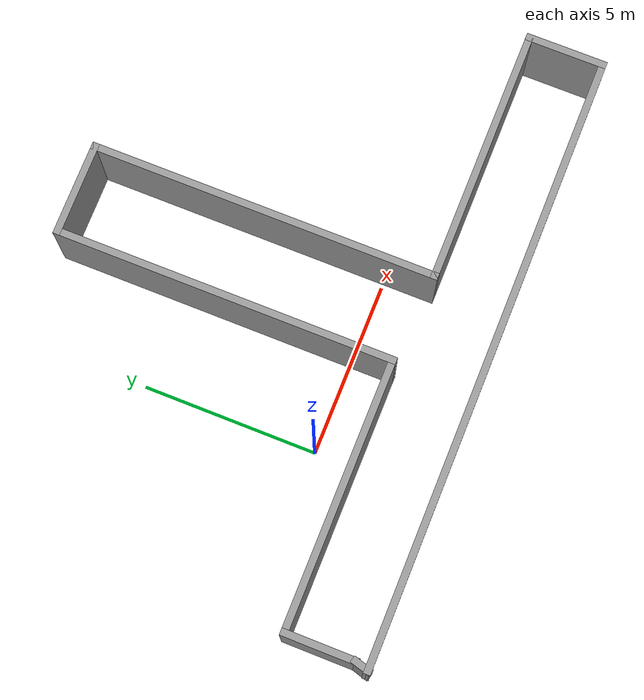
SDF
<?xml version='1.0'?>
<sdf version='1.4'>
  <model name='hallway'>
    <link name='Wall_0'>
      <collision name='Wall_0_Collision'>
        <geometry>
          <box>
            <size>2.14407 0.2 2.5</size>
          </box>
        </geometry>
        <pose>0 0 1.25 0 -0 0</pose>
      </collision>
      <visual name='Wall_0_Visual'>
        <pose>0 0 1.25 0 -0 0</pose>
        <geometry>
          <box>
            <size>2.14407 0.2 2.5</size>
          </box>
        </geometry>
        <material>
          <script>
            <uri>file://media/materials/scripts/gazebo.material</uri>
            <name>Gazebo/Grey</name>
          </script>
        </material>
      </visual>
      <velocity_decay>
        <linear>0</linear>
        <angular>0</angular>
      </velocity_decay>
      <pose>-4.9427 -2.11882 0 0 -0 1.5708</pose>
    </link>
    <link name='Wall_1'>
      <collision name='Wall_1_Collision'>
        <geometry>
          <box>
            <size>7.8176 0.2 2.5</size>
          </box>
        </geometry>
        <pose>0 0 1.25 0 -0 0</pose>
      </collision>
      <visual name='Wall_1_Visual'>
        <pose>0 0 1.25 0 -0 0</pose>
        <geometry>
          <box>
            <size>7.8176 0.2 2.5</size>
          </box>
        </geometry>
        <material>
          <script>
            <uri>file://media/materials/scripts/gazebo.material</uri>
            <name>Gazebo/Grey</name>
          </script>
        </material>
      </visual>
      <velocity_decay>
        <linear>0</linear>
        <angular>0</angular>
      </velocity_decay>
      <pose>-1.1339 -1.14678 0 0 -0 0</pose>
    </link>
    <link name='Wall_2'>
      <collision name='Wall_2_Collision'>
        <geometry>
          <box>
            <size>9.7618 0.2 2.5</size>
          </box>
        </geometry>
        <pose>0 0 1.25 0 -0 0</pose>
      </collision>
      <visual name='Wall_2_Visual'>
        <pose>0 0 1.25 0 -0 0</pose>
        <geometry>
          <box>
            <size>9.7618 0.2 2.5</size>
          </box>
        </geometry>
        <material>
          <script>
            <uri>file://media/materials/scripts/gazebo.material</uri>
            <name>Gazebo/Grey</name>
          </script>
        </material>
      </visual>
      <velocity_decay>
        <linear>0</linear>
        <angular>0</angular>
      </velocity_decay>
      <pose>2.6749 3.63412 0 0 -0 1.5708</pose>
    </link>
    <link name='Wall_3'>
      <collision name='Wall_3_Collision'>
        <geometry>
          <box>
            <size>2.73494 0.2 2.5</size>
          </box>
        </geometry>
        <pose>0 0 1.25 0 -0 0</pose>
      </collision>
      <visual name='Wall_3_Visual'>
        <pose>0 0 1.25 0 -0 0</pose>
        <geometry>
          <box>
            <size>2.73494 0.2 2.5</size>
          </box>
        </geometry>
        <material>
          <script>
            <uri>file://media/materials/scripts/gazebo.material</uri>
            <name>Gazebo/Grey</name>
          </script>
        </material>
      </visual>
      <velocity_decay>
        <linear>0</linear>
        <angular>0</angular>
      </velocity_decay>
      <pose>3.94238 8.41502 0 0 -0 0</pose>
    </link>
    <link name='Wall_4'>
      <collision name='Wall_4_Collision'>
        <geometry>
          <box>
            <size>9.96447 0.2 2.5</size>
          </box>
        </geometry>
        <pose>0 0 1.25 0 -0 0</pose>
      </collision>
      <visual name='Wall_4_Visual'>
        <pose>0 0 1.25 0 -0 0</pose>
        <geometry>
          <box>
            <size>9.96447 0.2 2.5</size>
          </box>
        </geometry>
        <material>
          <script>
            <uri>file://media/materials/scripts/gazebo.material</uri>
            <name>Gazebo/Grey</name>
          </script>
        </material>
      </visual>
      <velocity_decay>
        <linear>0</linear>
        <angular>0</angular>
      </velocity_decay>
      <pose>5.20985 3.53278 0 0 0 -1.5708</pose>
    </link>
    <link name='Wall_5'>
      <collision name='Wall_5_Collision'>
        <geometry>
          <box>
            <size>7.41722 0.2 2.5</size>
          </box>
        </geometry>
        <pose>0 0 1.25 0 -0 0</pose>
      </collision>
      <visual name='Wall_5_Visual'>
        <pose>0 0 1.25 0 -0 0</pose>
        <geometry>
          <box>
            <size>7.41722 0.2 2.5</size>
          </box>
        </geometry>
        <material>
          <script>
            <uri>file://media/materials/scripts/gazebo.material</uri>
            <name>Gazebo/Grey</name>
          </script>
        </material>
      </visual>
      <velocity_decay>
        <linear>0</linear>
        <angular>0</angular>
      </velocity_decay>
      <pose>8.81846 -1.34945 0 0 -0 0</pose>
    </link>
    <link name='Wall_6'>
      <collision name='Wall_6_Collision'>
        <geometry>
          <box>
            <size>2.32271 0.2 2.5</size>
          </box>
        </geometry>
        <pose>0 0 1.25 0 -0 0</pose>
      </collision>
      <visual name='Wall_6_Visual'>
        <pose>0 0 1.25 0 -0 0</pose>
        <geometry>
          <box>
            <size>2.32271 0.2 2.5</size>
          </box>
        </geometry>
        <material>
          <script>
            <uri>file://media/materials/scripts/gazebo.material</uri>
            <name>Gazebo/Grey</name>
          </script>
        </material>
      </visual>
      <velocity_decay>
        <linear>0</linear>
        <angular>0</angular>
      </velocity_decay>
      <pose>12.4271 -2.41081 0 0 0 -1.5708</pose>
    </link>
    <link name='Wall_7'>
      <collision name='Wall_7_Collision'>
        <geometry>
          <box>
            <size>17.677 0.2 2.5</size>
          </box>
        </geometry>
        <pose>0 0 1.25 0 -0 0</pose>
      </collision>
      <visual name='Wall_7_Visual'>
        <pose>0 0 1.25 0 -0 0</pose>
        <geometry>
          <box>
            <size>17.677 0.2 2.5</size>
          </box>
        </geometry>
        <material>
          <script>
            <uri>file://media/materials/scripts/gazebo.material</uri>
            <name>Gazebo/Grey</name>
          </script>
        </material>
      </visual>
      <velocity_decay>
        <linear>0</linear>
        <angular>0</angular>
      </velocity_decay>
      <pose>3.68857 -3.47216 0 0 -0 3.14159</pose>
    </link>
    <link name='Wall_8'>
      <collision name='Wall_8_Collision'>
        <geometry>
          <box>
            <size>0.596103 0.2 2.5</size>
          </box>
        </geometry>
        <pose>0 0 1.25 0 -0 0</pose>
      </collision>
      <visual name='Wall_8_Visual'>
        <pose>0 0 1.25 0 -0 0</pose>
        <geometry>
          <box>
            <size>0.596103 0.2 2.5</size>
          </box>
        </geometry>
        <material>
          <script>
            <uri>file://media/materials/scripts/gazebo.material</uri>
            <name>Gazebo/Grey</name>
          </script>
        </material>
      </visual>
      <velocity_decay>
        <linear>0</linear>
        <angular>0</angular>
      </velocity_decay>
      <pose>-4.99631 -3.28151 0 0 -0 1.29666</pose>
    </link>
    <static>1</static>
  </model>
</sdf>
